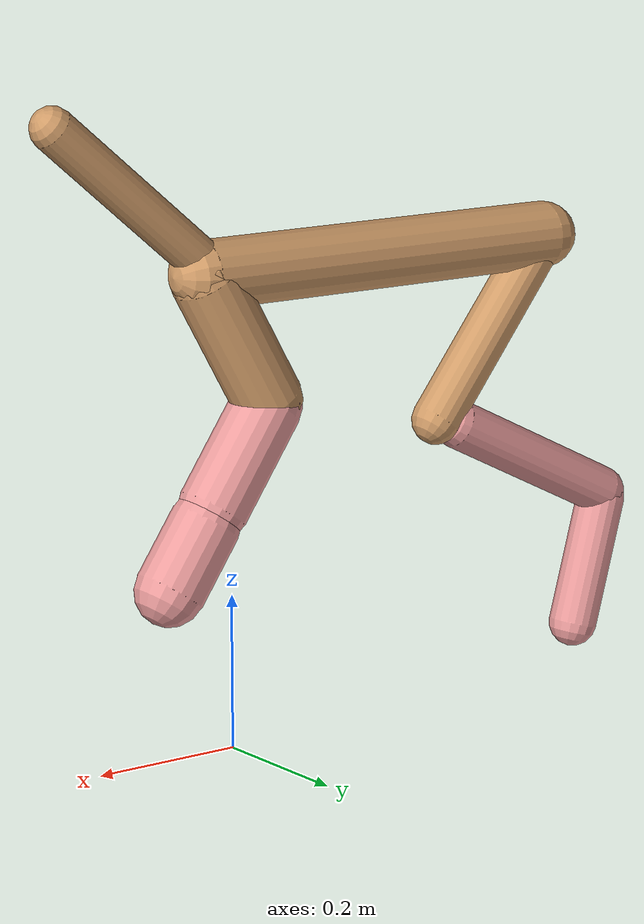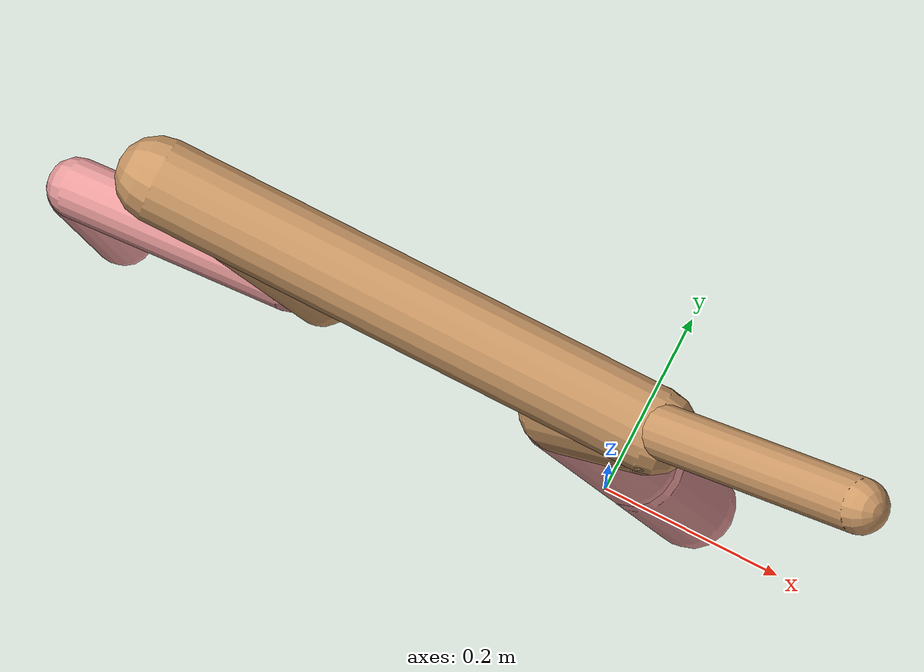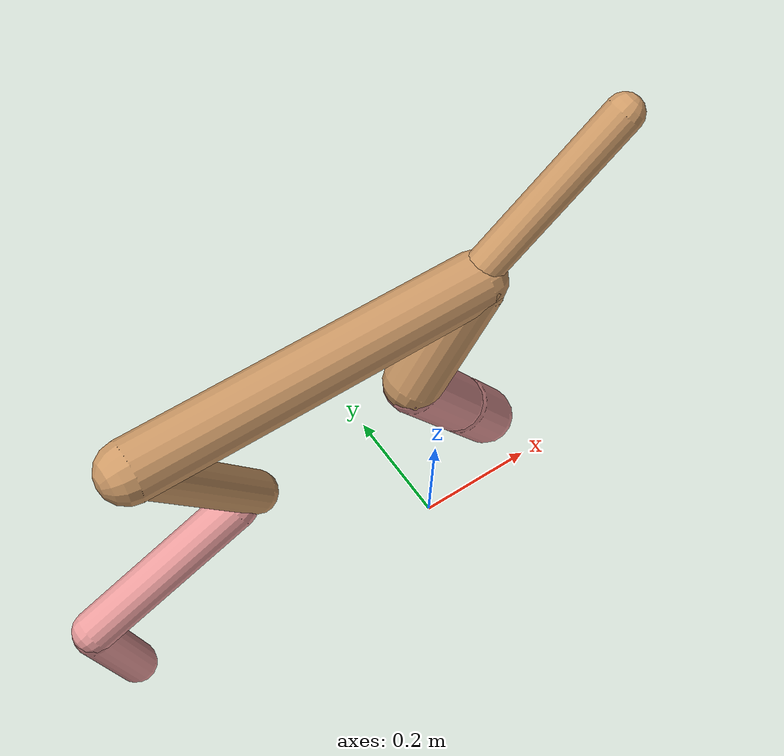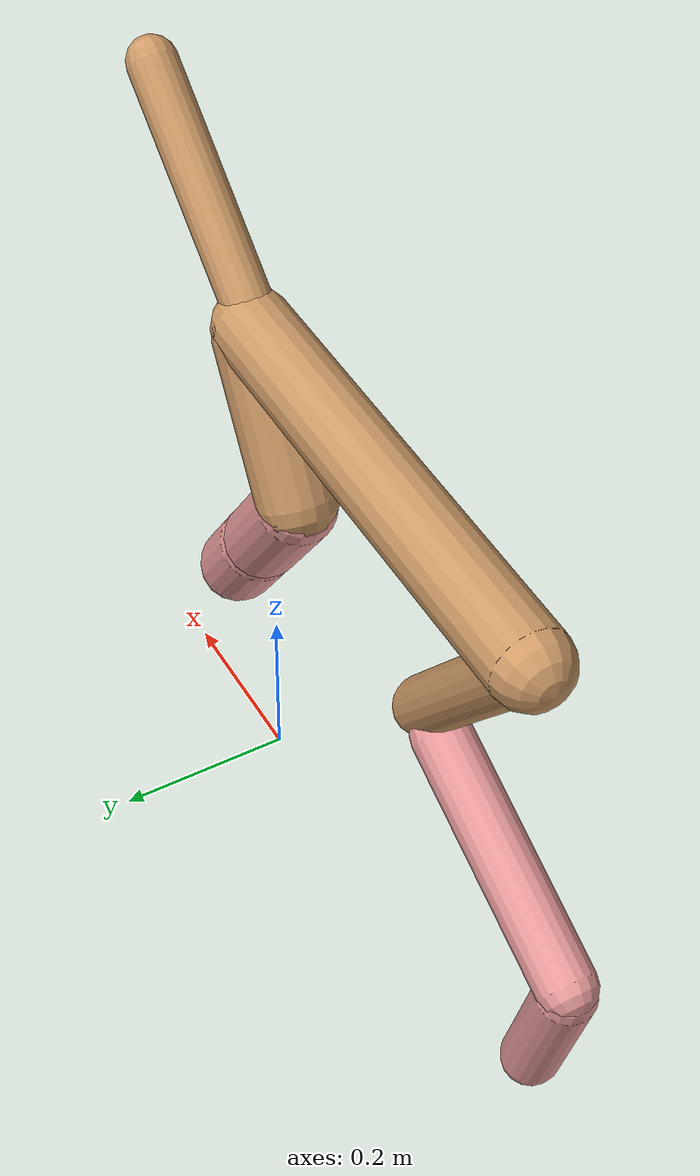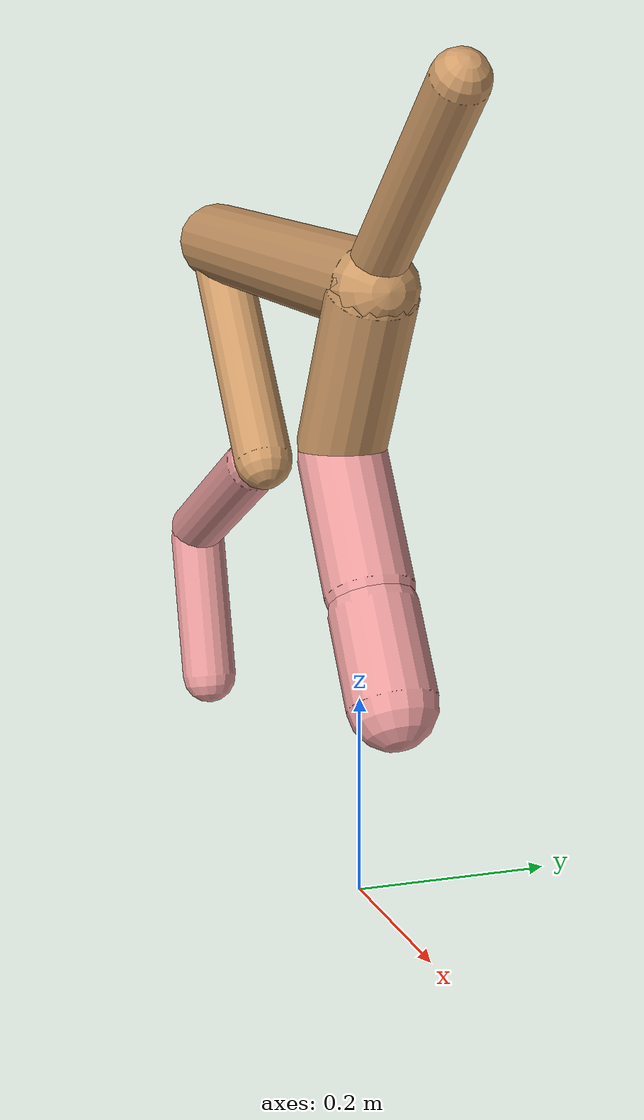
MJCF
<mujoco model="cheetah">
  <compiler angle="radian" coordinate="local" inertiafromgeom="true" settotalmass="14" />
  <default>
    <joint armature=".1" damping=".01" limited="true" solimplimit="0 .8 .03" solreflimit=".02 1" stiffness="8" />
    <geom conaffinity="0" condim="3" contype="1" friction="0.8 .1 .1" rgba="0.8 0.6 .4 1" solimp="0.0 0.8 0.01" solref="0.02 1" />
    <motor ctrllimited="true" ctrlrange="-1 1" />
  </default>
  <size nstack="300000" nuser_geom="1" />
  <option gravity="0 0 -9.81" timestep="0.01" />
  <worldbody>
    <body name="torso" pos="0.0 0.0 0.6116025445041624">
      <joint armature="0" axis="1 0 0" damping="0" limited="false" name="ignorex" pos="0 0 0" stiffness="0" type="slide" />
      <joint armature="0" axis="0 0 1" damping="0" limited="false" name="ignorez" pos="0 0 0" stiffness="0" type="slide" />
      <joint armature="0" axis="0 1 0" damping="0" limited="false" name="ignorey" pos="0 0 0" stiffness="0" type="hinge" />
      <geom fromto="-0.5 0.0 0.0 0.040107860893339564 0.0 0.0" name="torso" size="0.04395075541018014" type="capsule" />
      <geom axisangle="0 1 0 .87" name="head" pos="0.1401078608933396 0.0 0.1" size="0.0278404629123819 0.15" type="capsule" />

      <body name="bthigh" pos="-.5 0 0">
        <joint axis="0 1 0" damping="6" name="bthigh" pos="0 0 0" range="-.52 1.05" stiffness="240" type="hinge" />
        <geom axisangle="0 1 0 -3.8" name="bthigh" pos="0.09337707832381877 0.0 -0.12139020182096438" size="0.0322 0.13413760080771486" type="capsule" />
        <body name="bshin" pos="0.14675415664763752 0.0 -0.23278040364192876">
          <joint axis="0 1 0" damping="4.5" name="bshin" pos="0 0 0" range="-.785 .785" stiffness="180" type="hinge" />
          <geom axisangle="0 1 0 -2.03" name="bshin" pos="-0.12994935324440485 0.0 -0.06497467662220242" rgba="0.9 0.6 0.6 1" size="0.0322 0.13876303531832573" type="capsule" />
          <body name="bfoot" pos="-0.2598987064888097 0.0 -0.12994935324440485">
            <joint axis="0 1 0" damping="3" name="bfoot" pos="0 0 0" range="-.4 .785" stiffness="120" type="hinge" />
            <geom axisangle="0 1 0 -.27" name="bfoot" pos="0.027919352086319602 0.0 -0.09027257174576672" rgba="0.9 0.6 0.6 1" size="0.0322 0.08695816879948413" type="capsule" />
            <inertial mass="10" />
          </body>
        </body>
      </body>
      <body name="fthigh" pos="0.04010786089333962 0.0 0.0">
        <joint axis="0 1 0" damping="4.5" name="fthigh" pos="0 0 0" range="-1.5 0.8" stiffness="180" type="hinge" />
        <geom axisangle="0 1 0 .52" name="fthigh" pos="-0.04989554608158897 0.0 -0.0855352218541525" size="0.04515540482235636 0.0931" type="capsule" />
        <body name="fshin" pos="-0.09979109216317794 0.0 -0.171070443708305">
          <joint axis="0 1 0" damping="3" name="fshin" pos="0 0 0" range="-1.2 1.1" stiffness="120" type="hinge" />
          <geom axisangle="0 1 0 -.6" name="fshin" pos="0.046381400387749405 0.0 -0.06422040053688378" rgba="0.9 0.6 0.6 1" size="0.04515540482235636 0.07419999999999999" type="capsule" />
          <body name="ffoot" pos="0.09276280077549881 0.0 -0.12844080107376757">
            <joint axis="0 1 0" damping="1.5" name="ffoot" pos="0 0 0" range="-3.1 -0.3" stiffness="60" type="hinge" />
            <geom axisangle="0 1 0 -.6" name="ffoot" pos="0.033644090582416526 0.0 -0.05233525201709238" rgba="0.9 0.6 0.6 1" size="0.04515540482235636 0.049" type="capsule" />
            <inertial mass="10" />
          </body>
        </body>
      </body>
    </body>
  </worldbody>
  <actuator>
    <motor gear="120" joint="bthigh" name="bthigh" />
    <motor gear="90" joint="bshin" name="bshin" />
    <motor gear="60" joint="bfoot" name="bfoot" />
    <motor gear="120" joint="fthigh" name="fthigh" />
    <motor gear="60" joint="fshin" name="fshin" />
    <motor gear="30" joint="ffoot" name="ffoot" />
  </actuator>
</mujoco>
